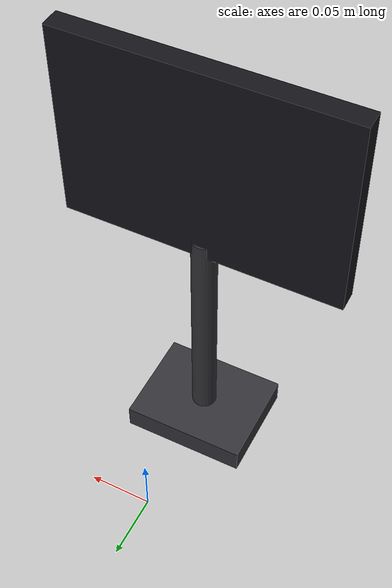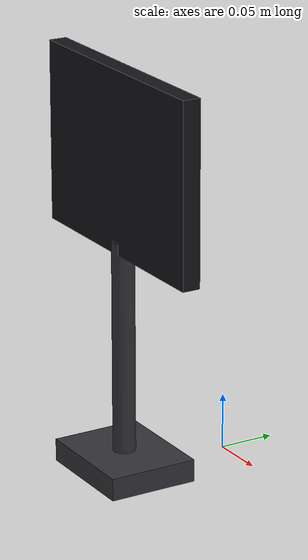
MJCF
<?xml version="1.0" encoding="utf-8"?>
<mujoco model="real_lab_massey_monitor">
  <compiler angle="radian" autolimits="true"/>
  <default>
    <default class="body"><geom contype="1" conaffinity="1"/></default>
  </default>
  <worldbody>
    <body name="base">
      <geom type="box" size="0.05 0.04 0.01" pos="0 -0.1 0.01" rgba="0.2 0.2 0.22 1" class="body"/>
      <geom type="cylinder" size="0.01 0.1" pos="0 -0.1 0.11" rgba="0.2 0.2 0.22 1" class="body"/>
      <body name="monitor_tilt" pos="0 -0.1 0.28">
        <joint name="monitor_tilt_joint" type="hinge" axis="1 0 0" range="-0.2 0.2" damping="0.4" frictionloss="0.15"/>
  <geom type="box" size="0.11 0.008 0.08" pos="0 0 0" rgba="0.08 0.08 0.1 1" class="body"/>
      </body>
    </body>
  </worldbody>
</mujoco>
